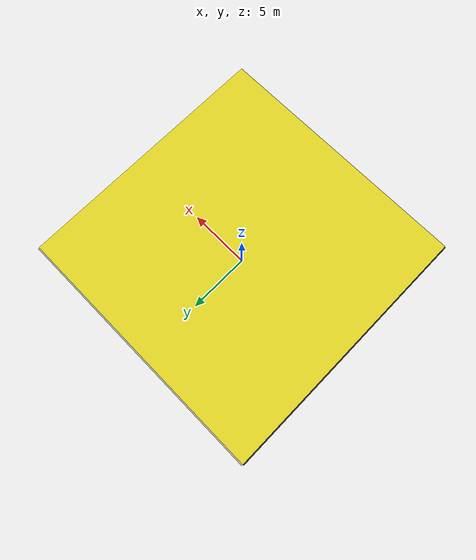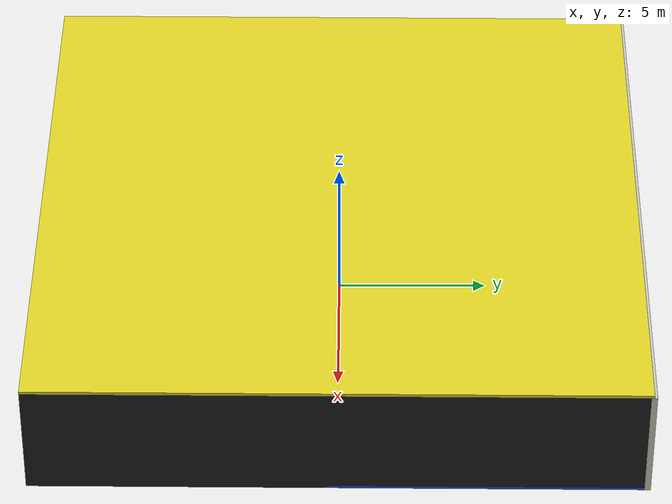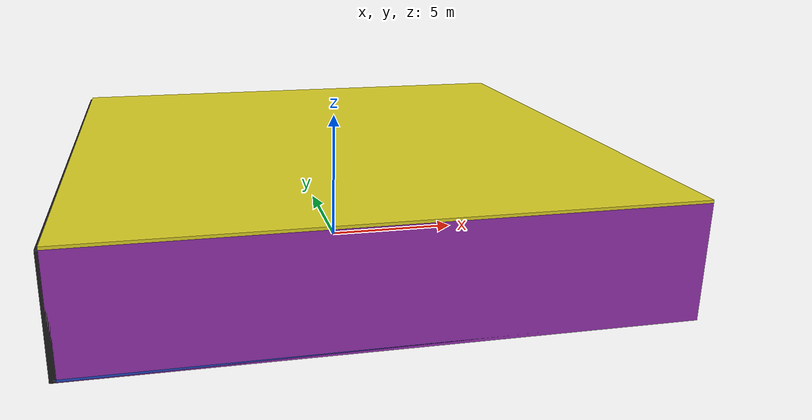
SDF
<sdf version="1.4">
 <world name="default">
  <physics type="ode">
   <max_step_size>0.001</max_step_size>
   <real_time_factor>1</real_time_factor>
   <real_time_update_rate>1000</real_time_update_rate>
   <gravity>0 0 -9.8</gravity>
  </physics>
  <scene><ambient>0.4 0.4 0.4 1</ambient><background>0.7 0.7 0.7 1</background><shadows>1</shadows></scene>
  <model name="Surrounding">
   <static>1</static>
   <link name="Ceiling">
    <collision name="Ceiling_Collision"><geometry><box><size>20 20 0.1</size></box></geometry></collision>
    <visual name="Ceiling_Visual">
     <geometry><box><size>20 20 0.1</size></box></geometry>
     <material>
      <script><uri>file://media/materials/scripts/gazebo.material</uri><name>Gazebo/Yellow</name></script>
     </material>
    </visual>
    <pose>0 0 4.05 0 0 0</pose>
   </link>
   <link name="Wall_South">
    <collision name="Wall_South_Collision">
     <geometry><box><size>20 0 4</size></box></geometry>
     <pose>0 0 2 0 -0 0</pose>
    </collision>
    <visual name="Wall_South_Visual">
     <pose>0 0 2 0 -0 0</pose>
     <geometry><box><size>20 0 4</size></box></geometry>
     <material>
      <script><uri>file://media/materials/scripts/gazebo.material</uri><name>Gazebo/PurpleGlow</name></script>
     </material>
    </visual>
    <velocity_decay><linear>0</linear><angular>0</angular></velocity_decay>
    <pose>0 -10 0 0 -0 0</pose>
   </link>
   <link name="Wall_East">
    <collision name="Wall_21_Collision">
     <geometry><box><size>20 0 4</size></box></geometry>
     <pose>0 0 2 0 -0 0</pose>
    </collision>
    <visual name="Wall_21_Visual">
     <pose>0 0 2 0 -0 0</pose>
     <geometry><box><size>20 0 4</size></box></geometry>
     <material>
      <script><uri>file://media/materials/scripts/gazebo.material</uri><name>Gazebo/FlatBlack</name></script>
     </material>
    </visual>
    <velocity_decay><linear>0</linear><angular>0</angular></velocity_decay>
    <pose>10 0 0 0 -0 1.5708</pose>
   </link>
   <link name="Wall_North">
    <collision name="Wall_22_Collision">
     <geometry><box><size>20 0.2 4</size></box></geometry>
     <pose>0 0 2 0 -0 0</pose>
    </collision>
    <visual name="Wall_22_Visual">
     <pose>0 0 2 0 -0 0</pose>
     <geometry><box><size>20 0.2 4</size></box></geometry>
     <material>
      <script><uri>file://media/materials/scripts/gazebo.material</uri><name>Gazebo/PaintedWall</name></script>
     </material>
    </visual>
    <velocity_decay><linear>0</linear><angular>0</angular></velocity_decay>
    <pose>0 10 0 0 -0 0</pose>
   </link>
   <link name="Wall_West">
    <collision name="Wall_23_Collision">
     <geometry><box><size>20 0.2 4</size></box></geometry>
     <pose>0 0 2 0 -0 0</pose>
    </collision>
    <visual name="Wall_23_Visual">
     <pose>0 0 2 0 -0 0</pose>
     <geometry><box><size>20 0.2 4</size></box></geometry>
     <material>
      <script><uri>file://media/materials/scripts/gazebo.material</uri><name>Gazebo/Black</name></script>
     </material>
    </visual>
    <velocity_decay><linear>0</linear><angular>0</angular></velocity_decay>
    <pose>-10 0 0 0 0 -1.5708</pose>
   </link>
   <link name="Ground_link">
    <collision name="collision">
     <pose>0 0 .05 0 -0 0</pose>
     <geometry><box><size>20 20 0.1</size></box></geometry>
    </collision>
    <visual name="visual">
     <pose>0 0 .05 0 -0 0</pose>
     <geometry><box><size>20 20 0.1</size></box></geometry>
     <material>
      <script><uri>file://media/materials/scripts/gazebo.material</uri><name>Gazebo/BlueLaser</name></script>
     </material>
    </visual>
   </link>
   <static>1</static>
  </model>
  <spherical_coordinates>
   <surface_model>EARTH_WGS84</surface_model>
   <latitude_deg>0</latitude_deg>
   <longitude_deg>0</longitude_deg>
   <elevation>0</elevation>
   <heading_deg>0</heading_deg>
  </spherical_coordinates>
  <light name="lightball_0" type="diffuse">
   <diffuse>0.8 0.8 0.8 1</diffuse>
   <specular>0.2 0.2 0.2 1</specular>
   <attenuation>
    <range>100</range>
    <constant>0.7</constant>
    <linear>0.01</linear>
    <quadratic>0.001</quadratic>
   </attenuation>
   <direction>-0.5 0.1 -0.9</direction>
   <pose>-0.152396918729 -7.30764820789 1.6355740828 0 0 0</pose>
  </light>
  <light name="lightball_1" type="diffuse">
   <diffuse>0.8 0.8 0.8 1</diffuse>
   <specular>0.2 0.2 0.2 1</specular>
   <attenuation>
    <range>100</range>
    <constant>0.7</constant>
    <linear>0.01</linear>
    <quadratic>0.001</quadratic>
   </attenuation>
   <direction>-0.5 0.1 -0.9</direction>
   <pose>4.15331104624 -1.09287134423 2.57496110582 0 0 0</pose>
  </light>
  <include>
   <uri>model://construction_cone</uri>
   <pose>-7.08515476681 5.27426142293 0 0 0 0.855395918213</pose>
  </include>
  <include><uri>model://textured_shapes</uri><pose>3.9077718943 -4.02949106446 0 0 0 2.52040238</pose></include>
 </world>
</sdf>

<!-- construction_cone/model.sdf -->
<sdf version="1.5">
  <model name="Construction Cone">
    <link name="link">
      <collision name="collision">
        <geometry>
          <mesh>
            <scale>10 10 10</scale>
            <uri>file://isr-testbed/construction_cone/meshes/construction_cone.dae</uri>
          </mesh>
        </geometry>
      </collision>
      <visual name="visual">
        <geometry>
          <mesh>
            <scale>10 10 10</scale>
            <uri>file://isr-testbed/construction_cone/meshes/construction_cone.dae</uri>
          </mesh>
        </geometry>
      </visual>
    </link>
  </model>
</sdf>

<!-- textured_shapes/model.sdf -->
<sdf version="1.6">
  <model name="textured_shapes">
    <pose>0 0 0.5 0 0 0</pose>
    <link name="box">
      <pose>0 -1.5 0 0 0 0</pose>
      <collision name="collision">
        <geometry>
          <box>
            <size>1 1 1</size>
          </box>
        </geometry>
      </collision>
      <visual name="visual">
        <geometry>
          <box>
            <size>1 1 1</size>
          </box>
        </geometry>
        <material>
          <script>
            <uri>model://../model_source/models/textured_shapes/materials/scripts</uri>
            <uri>model://../model_source/models/textured_shapes/materials/textures</uri>
            <name>TexturedShape/Squares</name>
          </script>
        </material>
      </visual>
    </link>
    <link name="sphere">
      <collision name="collision">
        <geometry>
          <sphere>
            <radius>0.5</radius>
          </sphere>
        </geometry>
      </collision>
      <visual name="visual">
        <geometry>
          <sphere>
            <radius>0.5</radius>
          </sphere>
        </geometry>
        <material>
          <script>
            <uri>model://../model_source/models/textured_shapes/materials/scripts</uri>
            <uri>model://../model_source/models/textured_shapes/materials/textures</uri>
            <name>TexturedShape/Squares</name>
          </script>
        </material>
      </visual>
    </link>
    <link name="cylinder">
      <pose>0 1.5 0 0 0 0</pose>
      <collision name="collision">
        <geometry>
          <cylinder>
            <radius>0.5</radius>
            <length>1</length>
          </cylinder>
        </geometry>
      </collision>
      <visual name="visual">
        <geometry>
          <cylinder>
            <radius>0.5</radius>
            <length>1</length>
          </cylinder>
        </geometry>
        <material>
          <script>
            <uri>model://../model_source/models/textured_shapes/materials/scripts</uri>
            <uri>model://../model_source/models/textured_shapes/materials/textures</uri>
            <name>TexturedShape/Squares</name>
          </script>
        </material>
      </visual>
    </link>
  </model>
</sdf>
